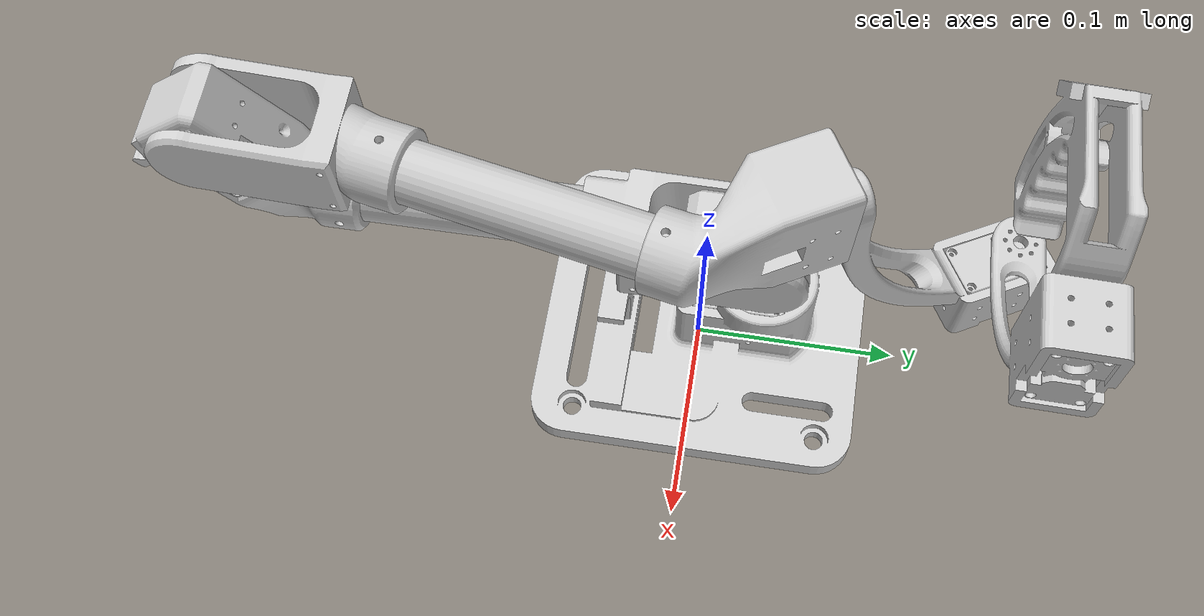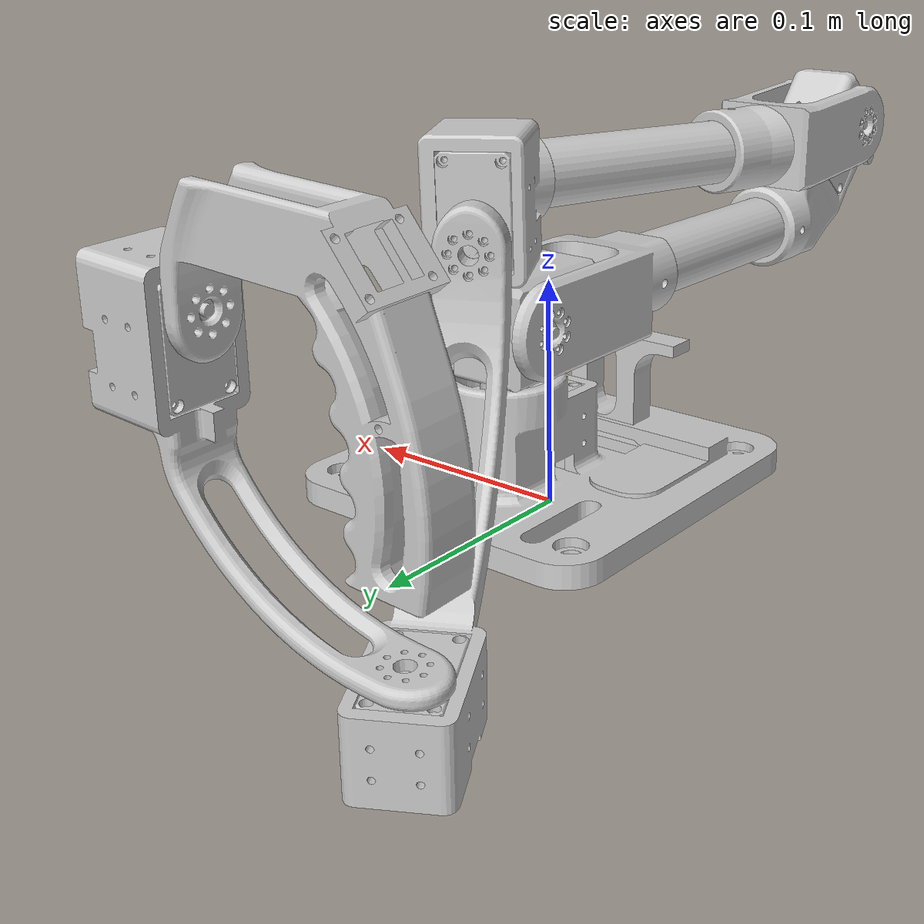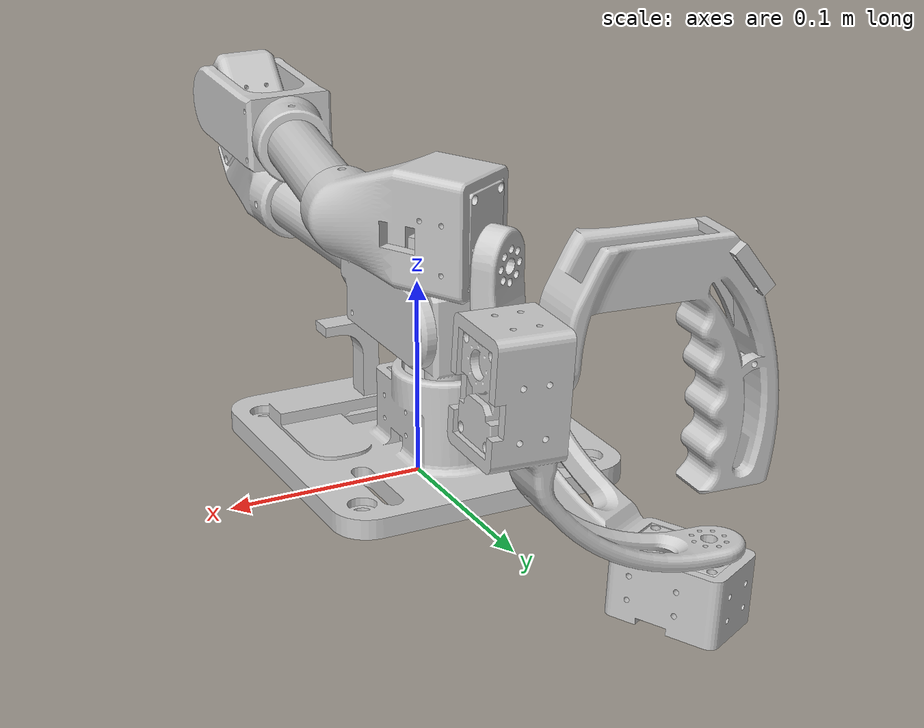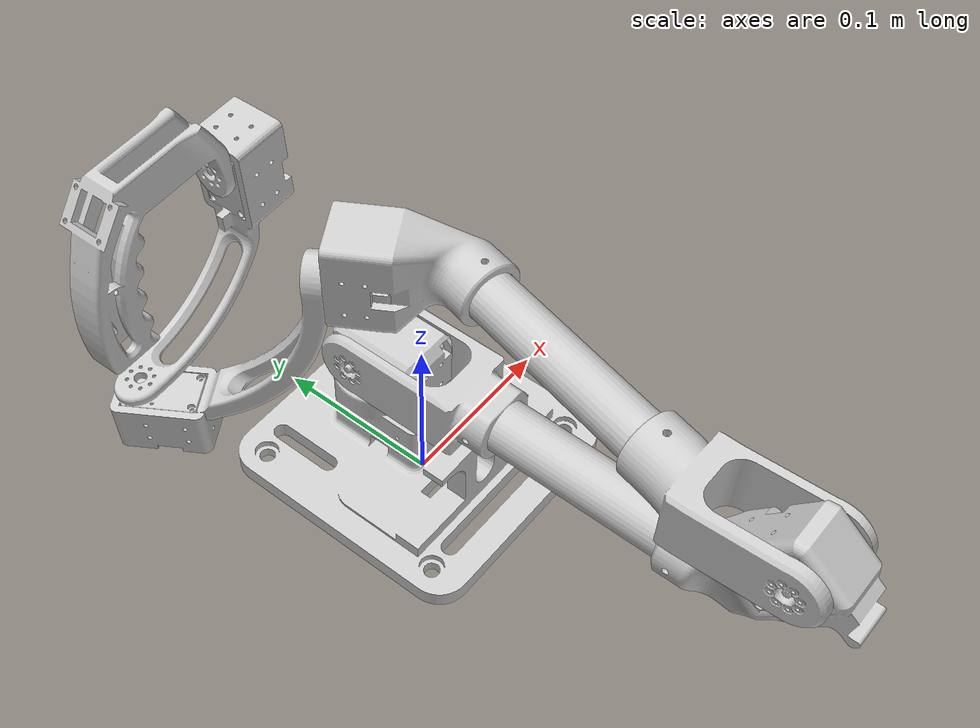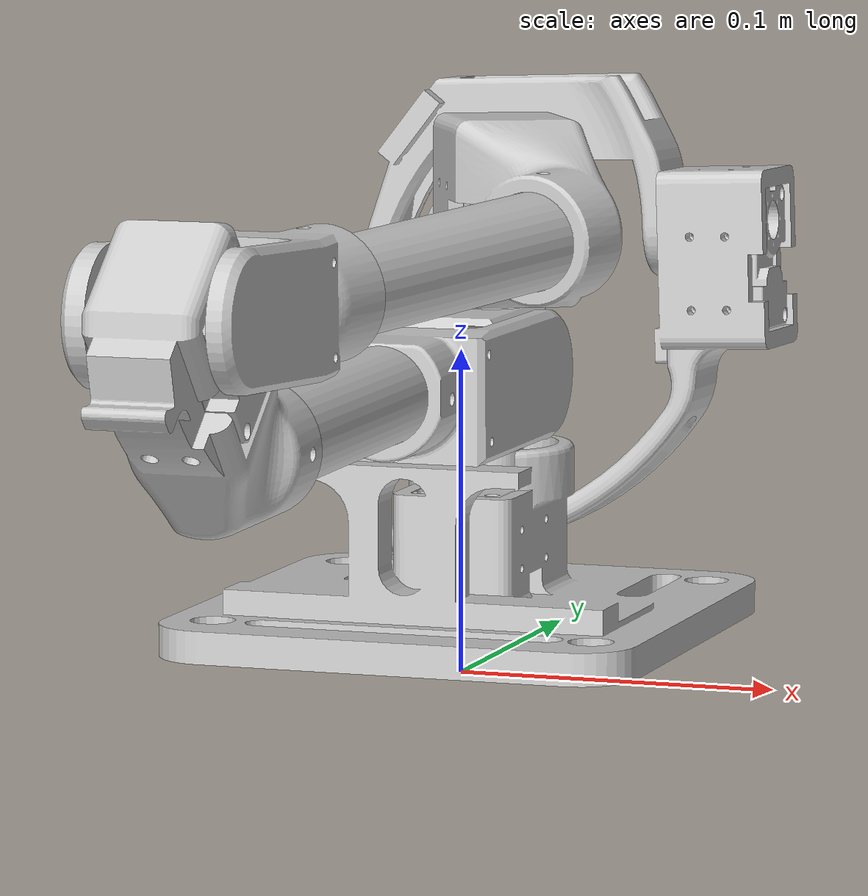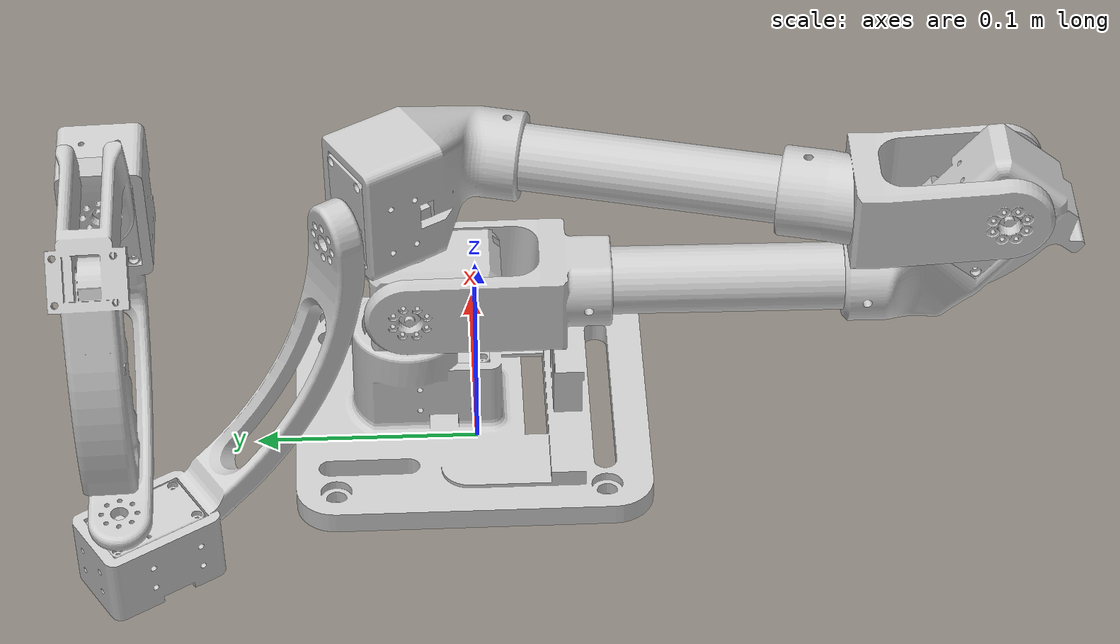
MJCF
<mujoco model="Leader_Right_URDF">
    <compiler angle="radian" coordinate="local"/>
    <option gravity="0 0 -9.81"/>

    <asset>
        <mesh name="base_link" file="meshes/base_link.stl" scale="0.001 0.001 0.001"/>
        <mesh name="m4_1" file="meshes/m4_1.stl" scale="0.001 0.001 0.001"/>
        <mesh name="link_1_1" file="meshes/link_1_1.stl" scale="0.001 0.001 0.001"/>
        <mesh name="m2_1" file="meshes/m2_1.stl" scale="0.001 0.001 0.001"/>
        <mesh name="link_2_1_1" file="meshes/link_2_1_1.stl" scale="0.001 0.001 0.001"/>
        <mesh name="link_2_2_1" file="meshes/link_2_2_1.stl" scale="0.001 0.001 0.001"/>
        <mesh name="link_2_3_1" file="meshes/link_2_3_1.stl" scale="0.001 0.001 0.001"/>
        <mesh name="m3_1" file="meshes/m3_1.stl" scale="0.001 0.001 0.001"/>
        <mesh name="link_3_1_1" file="meshes/link_3_1_1.stl" scale="0.001 0.001 0.001"/>
        <mesh name="link_3_2_1" file="meshes/link_3_2_1.stl" scale="0.001 0.001 0.001"/>
        <mesh name="link_3_3_1" file="meshes/link_3_3_1.stl" scale="0.001 0.001 0.001"/>
        <mesh name="link_4_1" file="meshes/link_4_1.stl" scale="0.001 0.001 0.001"/>
        <mesh name="m5_1" file="meshes/m5_1.stl" scale="0.001 0.001 0.001"/>
        <mesh name="link_5_1" file="meshes/link_5_1.stl" scale="0.001 0.001 0.001"/>
        <mesh name="m6_1" file="meshes/m6_1.stl" scale="0.001 0.001 0.001"/>
        <mesh name="m1_1" file="meshes/m1_1.stl" scale="0.001 0.001 0.001"/>
        <mesh name="handle_1" file="meshes/handle_1.stl" scale="0.001 0.001 0.001"/>
        <mesh name="end_eff_1" file="meshes/end_eff_1.stl" scale="0.001 0.001 0.001"/>
    </asset>

    <contact>
      <exclude body1="base_link" body2="m1_1"/>
      <exclude body1="m1_1" body2="link_1_1"/>
      <exclude body1="link_1_1" body2="m2_1"/>
      <exclude body1="m2_1" body2="link_2_1_1"/>
      <exclude body1="link_2_1_1" body2="link_2_2_1"/>
      <exclude body1="link_2_2_1" body2="link_2_3_1"/>
      <exclude body1="link_2_3_1" body2="m3_1"/>
      <exclude body1="m3_1" body2="link_3_1_1"/>
      <exclude body1="link_3_1_1" body2="link_3_2_1"/>
      <exclude body1="link_3_2_1" body2="link_3_3_1"/>
      <exclude body1="link_3_3_1" body2="m4_1"/>
      <exclude body1="m4_1" body2="link_4_1"/>
      <exclude body1="link_4_1" body2="m5_1"/>
      <exclude body1="m5_1" body2="link_5_1"/>
      <exclude body1="link_5_1" body2="m6_1"/>
      <exclude body1="m6_1" body2="handle_1"/>
      <exclude body1="handle_1" body2="end_eff_1"/>
    </contact>

    <worldbody>
        <body name="base_link" pos="-0.00030034569759734457 0.002681472054264954 0.011766075564396137">
            <inertial mass="0.12185569628171615"
                diaginertia="0.00024 0.000211 0.000407"
                pos="-0.00030034569759734457 0.002681472054264954 0.011766075564396137"/>
            <geom type="mesh" mesh="base_link" rgba="0.8 0.8 0.8 1"/>

            <body name="m1_1" pos="0.00012 -0.008312 0.044">
                <inertial mass="0.06487037677335636"
                    diaginertia="1.8e-05 1e-05 1.6e-05"
                    pos="-3.5759279214297903e-07 0.023360980651256837 -0.016024080722972178"/>
                <geom type="mesh" mesh="m1_1" pos="-0.00012 0.008312 -0.044" rgba="0.8 0.8 0.8 1"/>

                <body name="link_1_1" pos="0.0 0.03525 0.002">
                    <joint name="joint_1" type="hinge" axis="0 0 1" limited="true" range="-1.57 1.57"/>
                    <inertial mass="0.01445076679422206"
                        diaginertia="9e-06 5e-06 7e-06"
                        pos="-0.003859633472284745 -0.01158160113854981 0.027712968758424578"/>
                    <geom type="mesh" mesh="link_1_1" pos="-0.00012 -0.026938 -0.046" rgba="0.8 0.8 0.8 1"/>

                    <body name="m2_1" pos="-0.020245 0.01155 0.031787">
                        <inertial mass="0.06591293785346776"
                            diaginertia="1.6e-05 1e-05 1.8e-05"
                            pos="0.016029919502769822 -0.02358644177681874 3.1328654056528293e-06"/>
                        <geom type="mesh" mesh="m2_1" pos="0.020125 -0.038488 -0.077787" rgba="0.8 0.8 0.8 1"/>

                        <body name="link_2_1_1" pos="-0.002 -0.0117 0.0">
                            <joint name="joint_2" type="hinge" axis="-1 0 0" limited="true" range="0 3.14159"/>
                            <inertial mass="0.030872066341615056"
                                diaginertia="2.8e-05 1.3e-05 3.3e-05"
                                pos="0.020447943041881828 -0.04356852290934202 3.9857731995579515e-05"/>
                            <geom type="mesh" mesh="link_2_1_1" pos="0.022125 -0.026788 -0.077787" rgba="0.8 0.8 0.8 1"/>

                            <body name="link_2_2_1" pos="0.017443 -0.069292 0.003547">
                                <inertial mass="0.005825311058581146"
                                    diaginertia="1e-05 1e-06 1e-05"
                                    pos="1.4881464563843566e-07 -0.07134822191275968 -0.0008403157853632409"/>
                                <geom type="mesh" mesh="link_2_2_1" pos="0.004682 0.042504 -0.081334" rgba="0.8 0.8 0.8 1"/>

                                <body name="link_2_3_1" pos="0.0 -0.14269 -0.001687">
                                    <inertial mass="0.041996926821997745"
                                        diaginertia="5e-05 2.6e-05 3.2e-05"
                                        pos="0.0009783437307514867 -0.030166965594475792 0.019221093372812192"/>
                                    <geom type="mesh" mesh="link_2_3_1" pos="0.004682 0.185194 -0.079647" rgba="0.8 0.8 0.8 1"/>

                                    <body name="m3_1" pos="-0.004435 -0.020321 0.032027">
                                        <inertial mass="0.0648704004829569"
                                            diaginertia="1.6e-05 1.5e-05 1.3e-05"
                                            pos="0.0050244794316411405 -0.02127196000304249 0.00318241408828622"/>
                                        <geom type="mesh" mesh="m3_1" pos="0.009117 0.205515 -0.111674" rgba="0.8 0.8 0.8 1"/>

                                        <body name="link_3_1_1" pos="-0.013 -0.028914 0.01229">
                                            <joint name="joint_3" type="hinge" axis="-1 0 0" limited="true" range="-3 0"/>
                                            <inertial mass="0.035848101240379376"
                                                diaginertia="3.7e-05 1.6e-05 4.3e-05"
                                                pos="0.01925740870970822 0.045095559236192934 -0.002376162994697062"/>
                                            <geom type="mesh" mesh="link_3_1_1" pos="0.022117 0.234429 -0.123964" rgba="0.8 0.8 0.8 1"/>

                                            <body name="link_3_2_1" pos="0.021995 0.067624 -0.004247">
                                                <inertial mass="0.006739824886437884"
                                                    diaginertia="1.5e-05 2e-06 1.6e-05"
                                                    pos="0.017094820428246962 0.08062828750281091 0.002815359691894781"/>
                                                <geom type="mesh" mesh="link_3_2_1" pos="0.000122 0.166805 -0.119717" rgba="0.8 0.8 0.8 1"/>

                                                <body name="link_3_3_1" pos="0.034139 0.161025 0.005623">
                                                    <inertial mass="0.04267706758754168"
                                                        diaginertia="2.8e-05 2.3e-05 2.8e-05"
                                                        pos="-0.017356365703052625 0.022923035729961832 0.0023524297558247254"/>
                                                    <geom type="mesh" mesh="link_3_3_1" pos="-0.034017 0.00578 -0.12534" rgba="0.8 0.8 0.8 1"/>

                                                    <body name="m4_1" pos="-0.042017 0.057766 -0.0214">
                                                        <inertial mass="0.06486746136281475"
                                                            diaginertia="1.7e-05 1.6e-05 1e-05"
                                                            pos="0.007808537692337499 -0.013114392400809152 0.023646528010421358"/>
                                                        <geom type="mesh" mesh="m4_1" pos="0.008 -0.051986 -0.10394" rgba="0.8 0.8 0.8 1"/>

                                                        <body name="link_4_1" pos="-0.001099 0.002098 0.011178">
                                                            <joint name="joint_4" type="hinge" axis="0.499924 -0.865456 0.03259" limited="true" range="-1.57 1.57"/>
                                                            <inertial mass="0.06879433965291164"
                                                                diaginertia="0.0003 0.000228 0.000154"
                                                                pos="-0.0280025813377231 0.05104647293237732 -0.08619383067194103"/>
                                                            <geom type="mesh" mesh="link_4_1" pos="0.009099 -0.054084 -0.115118" rgba="0.8 0.8 0.8 1"/>

                                                            <body name="m5_1" pos="-0.062522 0.112633 -0.118132">
                                                                <inertial mass="0.06486746136281475"
                                                                    diaginertia="1.6e-05 1.2e-05 1.6e-05"
                                                                    pos="0.012233838838736119 -0.020546129550244763 -0.014843936059869743"/>
                                                                <geom type="mesh" mesh="m5_1" pos="0.071621 -0.166717 0.003014" rgba="0.8 0.8 0.8 1"/>

                                                                <body name="link_5_1" pos="0.005532 -0.009665 0.00256">
                                                                    <joint name="joint_5" type="hinge" axis="-0.042543 0.033192 0.998543" limited="true" range="-0.75 3.14159"/>
                                                                    <inertial mass="0.02305322969048352"
                                                                        diaginertia="4.4e-05 6.9e-05 3.2e-05"
                                                                        pos="0.08246994543291167 0.002643216748079852 0.07299025011434124"/>
                                                                    <geom type="mesh" mesh="link_5_1" pos="0.066089 -0.157052 0.000454" rgba="0.8 0.8 0.8 1"/>

                                                                    <body name="m6_1" pos="0.084229 0.004177 0.124145">
                                                                        <inertial mass="0.06486743765321443"
                                                                            diaginertia="1.6e-05 1.8e-05 1e-05"
                                                                            pos="0.0169951225541503 -0.000754353795619972 -0.022422234173836167"/>
                                                                        <geom type="mesh" mesh="m6_1" pos="-0.01814 -0.161229 -0.123691" rgba="0.8 0.8 0.8 1"/>

                                                                        <body name="handle_1" pos="-0.001519 -0.000375 -0.011319">
                                                                            <joint name="joint_6" type="hinge" axis="0.999094 0.000854 0.042538" limited="true" range="-1.57 1.57"/>
                                                                            <inertial mass="0.08547561001429303"
                                                                                diaginertia="0.000116 0.000202 9.7e-05"
                                                                                pos="-0.06566378018000124 -3.909484831515764e-05 -0.005125381346064856"/>
                                                                            <geom type="mesh" mesh="handle_1" pos="-0.016621 -0.160854 -0.112372" rgba="0.8 0.8 0.8 1"/>

                                                                            <body name="end_eff_1" pos="-0.09154 0.00564 -0.017042">
                                                                                <inertial mass="0.0006658605629283867"
                                                                                    diaginertia="0 0 0"
                                                                                    pos="-3.3901085691734334e-06 -0.005996518654578037 0.00021115059021989402"/>
                                                                                <geom type="mesh" mesh="end_eff_1" pos="0.074919 -0.166494 -0.09533" rgba="0.8 0.8 0.8 1"/>
                                                                            </body>
                                                                        </body>
                                                                    </body>
                                                                </body>
                                                            </body>
                                                        </body>
                                                    </body>
                                                </body>
                                            </body>
                                        </body>
                                    </body>
                                </body>
                            </body>
                        </body>
                    </body>
                </body>
            </body>
        </body>
    </worldbody>

    <actuator>
        <motor joint="joint_1" ctrlrange="-1.57 1.57" gear="1" forcerange="-100 100"/>
        <motor joint="joint_2" ctrlrange="0 3.14159" gear="1" forcerange="-100 100"/>
        <motor joint="joint_3" ctrlrange="-3 0" gear="1" forcerange="-100 100"/>
        <motor joint="joint_4" ctrlrange="-1.57 1.57" gear="1" forcerange="-100 100"/>
        <motor joint="joint_5" ctrlrange="-0.75 3.14159" gear="1" forcerange="-100 100"/>
        <motor joint="joint_6" ctrlrange="-1.57 1.57" gear="1" forcerange="-100 100"/>
    </actuator>
</mujoco>
